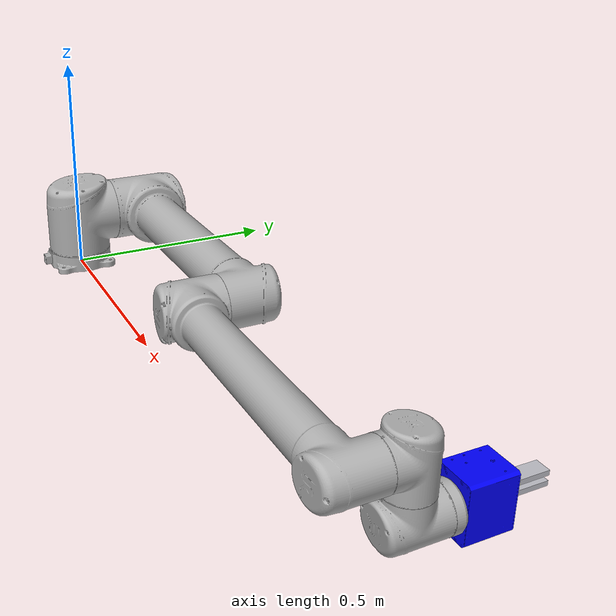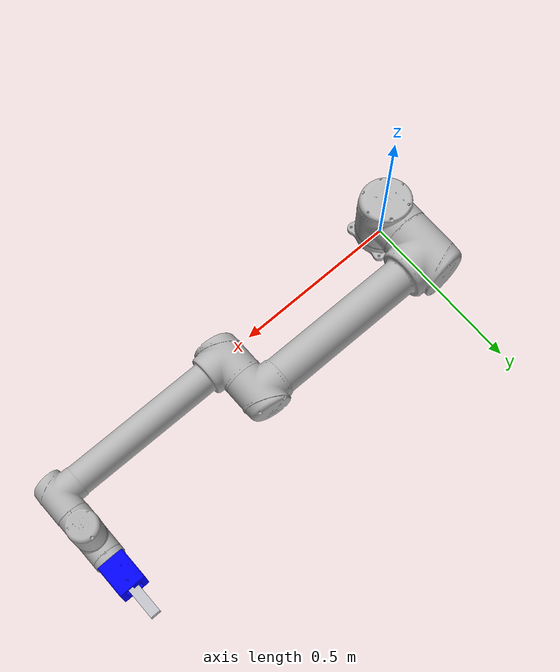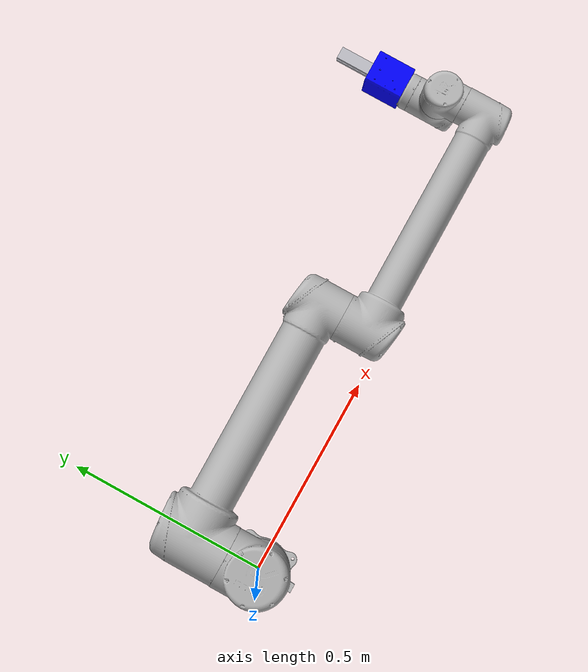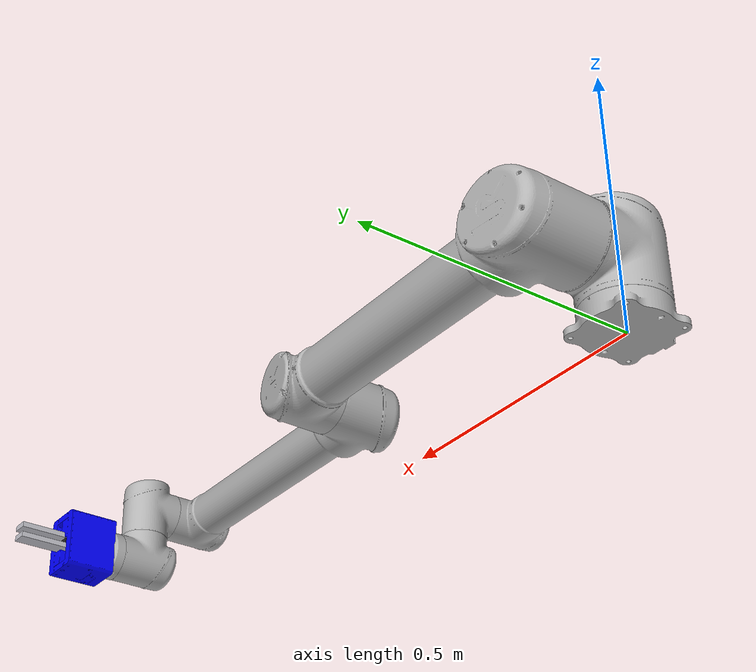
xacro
<?xml version="1.0" ?>
<!-- URDF obtido a partir do moveit assistant -->
<robot name="ur10_with_gripper">

  <link name="world"/>
  <!-- Junta fixa entre world e base_link -->
  <joint name="world_to_base_joint" type="fixed">
    <parent link="world"/>
    <child link="base_link"/>
    <origin rpy="0 0 0" xyz="0 0 0"/>
  </joint>

  <transmission name="shoulder_pan_trans">
    <type>transmission_interface/SimpleTransmission</type>
    <joint name="shoulder_pan_joint">
      <hardwareInterface>hardware_interface/EffortJointInterface</hardwareInterface>
    </joint>
    <actuator name="shoulder_pan_motor">
      <mechanicalReduction>1</mechanicalReduction>
    </actuator>
  </transmission>
  <transmission name="shoulder_lift_trans">
    <type>transmission_interface/SimpleTransmission</type>
    <joint name="shoulder_lift_joint">
      <hardwareInterface>hardware_interface/EffortJointInterface</hardwareInterface>
    </joint>
    <actuator name="shoulder_lift_motor">
      <mechanicalReduction>1</mechanicalReduction>
    </actuator>
  </transmission>
  <transmission name="elbow_trans">
    <type>transmission_interface/SimpleTransmission</type>
    <joint name="elbow_joint">
      <hardwareInterface>hardware_interface/EffortJointInterface</hardwareInterface>
    </joint>
    <actuator name="elbow_motor">
      <mechanicalReduction>1</mechanicalReduction>
    </actuator>
  </transmission>
  <transmission name="wrist_1_trans">
    <type>transmission_interface/SimpleTransmission</type>
    <joint name="wrist_1_joint">
      <hardwareInterface>hardware_interface/EffortJointInterface</hardwareInterface>
    </joint>
    <actuator name="wrist_1_motor">
      <mechanicalReduction>1</mechanicalReduction>
    </actuator>
  </transmission>
  <transmission name="wrist_2_trans">
    <type>transmission_interface/SimpleTransmission</type>
    <joint name="wrist_2_joint">
      <hardwareInterface>hardware_interface/EffortJointInterface</hardwareInterface>
    </joint>
    <actuator name="wrist_2_motor">
      <mechanicalReduction>1</mechanicalReduction>
    </actuator>
  </transmission>
  <transmission name="wrist_3_trans">
    <type>transmission_interface/SimpleTransmission</type>
    <joint name="wrist_3_joint">
      <hardwareInterface>hardware_interface/EffortJointInterface</hardwareInterface>
    </joint>
    <actuator name="wrist_3_motor">
      <mechanicalReduction>1</mechanicalReduction>
    </actuator>
  </transmission>
  <!-- links: main serial chain -->
  <link name="base_link"/>
  <link name="base_link_inertia">
    <visual>
      <origin rpy="0 0 3.141592653589793" xyz="0 0 0"/>
      <geometry>
        <mesh filename="package://ur_description/meshes/ur10/visual/base.dae"/>
      </geometry>
      <material name="LightGrey">
        <color rgba="0.7 0.7 0.7 1.0"/>
      </material>
    </visual>
    <collision>
      <origin rpy="0 0 3.141592653589793" xyz="0 0 0"/>
      <geometry>
        <mesh filename="package://ur_description/meshes/ur10/collision/base.stl"/>
      </geometry>
    </collision>
    <inertial>
      <mass value="4.0"/>
      <origin rpy="0 0 0" xyz="0 0 0"/>
      <inertia ixx="0.0061063308908" ixy="0.0" ixz="0.0" iyy="0.0061063308908" iyz="0.0" izz="0.01125"/>
    </inertial>
  </link>
  <link name="shoulder_link">
    <visual>
      <origin rpy="0 0 3.141592653589793" xyz="0 0 0"/>
      <geometry>
        <mesh filename="package://ur_description/meshes/ur10/visual/shoulder.dae"/>
      </geometry>
      <material name="LightGrey">
        <color rgba="0.7 0.7 0.7 1.0"/>
      </material>
    </visual>
    <collision>
      <origin rpy="0 0 3.141592653589793" xyz="0 0 0"/>
      <geometry>
        <mesh filename="package://ur_description/meshes/ur10/collision/shoulder.stl"/>
      </geometry>
    </collision>
    <inertial>
      <mass value="7.1"/>
      <origin rpy="1.570796326794897 0 0" xyz="0.021 -0.027 0.0"/>
      <inertia ixx="0.03408" ixy="2e-05" ixz="-0.00425" iyy="0.03529" iyz="8e-05" izz="0.02156"/>
    </inertial>
  </link>
  <link name="upper_arm_link">
    <visual>
      <origin rpy="1.5707963267948966 0 -1.5707963267948966" xyz="0 0 0.220941"/>
      <geometry>
        <mesh filename="package://ur_description/meshes/ur10/visual/upperarm.dae"/>
      </geometry>
      <material name="LightGrey">
        <color rgba="0.7 0.7 0.7 1.0"/>
      </material>
    </visual>
    <collision>
      <origin rpy="1.5707963267948966 0 -1.5707963267948966" xyz="0 0 0.220941"/>
      <geometry>
        <mesh filename="package://ur_description/meshes/ur10/collision/upperarm.stl"/>
      </geometry>
    </collision>
    <inertial>
      <mass value="12.7"/>
      <origin rpy="0 0 0" xyz="-0.232 0.0 0.158"/>
      <inertia ixx="0.02814" ixy="5e-05" ixz="-0.01561" iyy="0.77068" iyz="2e-05" izz="0.76943"/>
    </inertial>
  </link>
  <link name="forearm_link">
    <visual>
      <origin rpy="1.5707963267948966 0 -1.5707963267948966" xyz="0 0 0.049042"/>
      <geometry>
        <mesh filename="package://ur_description/meshes/ur10/visual/forearm.dae"/>
      </geometry>
      <material name="LightGrey">
        <color rgba="0.7 0.7 0.7 1.0"/>
      </material>
    </visual>
    <collision>
      <origin rpy="1.5707963267948966 0 -1.5707963267948966" xyz="0 0 0.049042"/>
      <geometry>
        <mesh filename="package://ur_description/meshes/ur10/collision/forearm.stl"/>
      </geometry>
    </collision>
    <inertial>
      <mass value="4.27"/>
      <origin rpy="0 0 0" xyz="-0.3323 0.0 0.068"/>
      <inertia ixx="0.01014" ixy="8e-05" ixz="0.00916" iyy="0.30928" iyz="0.0" izz="0.30646"/>
    </inertial>
  </link>
  <link name="wrist_1_link">
    <visual>
      <!-- TODO: Move this to a parameter -->
      <origin rpy="1.5707963267948966 0 0" xyz="0 0 -0.1149"/>
      <geometry>
        <mesh filename="package://ur_description/meshes/ur10/visual/wrist1.dae"/>
      </geometry>
      <material name="LightGrey">
        <color rgba="0.7 0.7 0.7 1.0"/>
      </material>
    </visual>
    <collision>
      <origin rpy="1.5707963267948966 0 0" xyz="0 0 -0.1149"/>
      <geometry>
        <mesh filename="package://ur_description/meshes/ur10/collision/wrist1.stl"/>
      </geometry>
    </collision>
    <inertial>
      <mass value="2.0"/>
      <origin rpy="1.570796326794897 0 0" xyz="0.0 -0.018 0.007"/>
      <inertia ixx="0.00296" ixy="-1e-05" ixz="0.0" iyy="0.00222" iyz="-0.00024" izz="0.00258"/>
    </inertial>
  </link>
  <link name="wrist_2_link">
    <visual>
      <origin rpy="0 0 0" xyz="0 0 -0.1158"/>
      <geometry>
        <mesh filename="package://ur_description/meshes/ur10/visual/wrist2.dae"/>
      </geometry>
      <material name="LightGrey">
        <color rgba="0.7 0.7 0.7 1.0"/>
      </material>
    </visual>
    <collision>
      <origin rpy="0 0 0" xyz="0 0 -0.1158"/>
      <geometry>
        <mesh filename="package://ur_description/meshes/ur10/collision/wrist2.stl"/>
      </geometry>
    </collision>
    <inertial>
      <mass value="2.0"/>
      <origin rpy="-1.570796326794897 0 0" xyz="0.0 0.018 -0.007"/>
      <inertia ixx="0.00296" ixy="-1e-05" ixz="0.0" iyy="0.00222" iyz="-0.00024" izz="0.00258"/>
    </inertial>
  </link>
  <link name="wrist_3_link">
    <visual>
      <origin rpy="1.5707963267948966 0 0" xyz="0 0 -0.0922"/>
      <geometry>
        <mesh filename="package://ur_description/meshes/ur10/visual/wrist3.dae"/>
      </geometry>
      <material name="LightGrey">
        <color rgba="0.7 0.7 0.7 1.0"/>
      </material>
    </visual>
    <collision>
      <origin rpy="1.5707963267948966 0 0" xyz="0 0 -0.0922"/>
      <geometry>
        <mesh filename="package://ur_description/meshes/ur10/collision/wrist3.stl"/>
      </geometry>
    </collision>
    <inertial>
      <mass value="0.365"/>
      <origin rpy="0 0 0" xyz="0.0 0 -0.026"/>
      <inertia ixx="0.0004" ixy="0.0" ixz="0.0" iyy="0.00041" iyz="0.0" izz="0.00034"/>
    </inertial>
  </link>
  <!-- joints: main serial chain -->
  <joint name="base_link-base_link_inertia" type="fixed">
    <parent link="base_link"/>
    <child link="base_link_inertia"/>
    <origin rpy="0 0 3.141592653589793" xyz="0 0 0"/>
  </joint>
  <joint name="shoulder_pan_joint" type="revolute">
    <parent link="base_link_inertia"/>
    <child link="shoulder_link"/>
    <origin rpy="0 0 0" xyz="0 0 0.1273"/>
    <axis xyz="0 0 1"/>
    <limit effort="330.0" lower="-6.283185307179586" upper="6.283185307179586" velocity="2.0943951023931953"/>
    <dynamics damping="0" friction="0"/>
  </joint>
  <joint name="shoulder_lift_joint" type="revolute">
    <parent link="shoulder_link"/>
    <child link="upper_arm_link"/>
    <origin rpy="1.570796327 0 0" xyz="0 0 0"/>
    <axis xyz="0 0 1"/>
    <limit effort="330.0" lower="-6.283185307179586" upper="6.283185307179586" velocity="2.0943951023931953"/>
    <dynamics damping="0" friction="0"/>
  </joint>
  <joint name="elbow_joint" type="revolute">
    <parent link="upper_arm_link"/>
    <child link="forearm_link"/>
    <origin rpy="0 0 0" xyz="-0.612 0 0"/>
    <axis xyz="0 0 1"/>
    <limit effort="150.0" lower="-3.141592653589793" upper="3.141592653589793" velocity="3.141592653589793"/>
    <dynamics damping="0" friction="0"/>
  </joint>
  <joint name="wrist_1_joint" type="revolute">
    <parent link="forearm_link"/>
    <child link="wrist_1_link"/>
    <origin rpy="0 0 0" xyz="-0.5723 0 0.163941"/>
    <axis xyz="0 0 1"/>
    <limit effort="56.0" lower="-6.283185307179586" upper="6.283185307179586" velocity="3.141592653589793"/>
    <dynamics damping="0" friction="0"/>
  </joint>
  <joint name="wrist_2_joint" type="revolute">
    <parent link="wrist_1_link"/>
    <child link="wrist_2_link"/>
    <origin rpy="1.570796327 0 0" xyz="0 -0.1157 -2.373046667922381e-11"/>
    <axis xyz="0 0 1"/>
    <limit effort="56.0" lower="-6.283185307179586" upper="6.283185307179586" velocity="3.141592653589793"/>
    <dynamics damping="0" friction="0"/>
  </joint>
  <joint name="wrist_3_joint" type="revolute">
    <parent link="wrist_2_link"/>
    <child link="wrist_3_link"/>
    <origin rpy="1.570796326589793 3.141592653589793 3.141592653589793" xyz="0 0.0922 -1.891053610911353e-11"/>
    <axis xyz="0 0 1"/>
    <limit effort="56.0" lower="-6.283185307179586" upper="6.283185307179586" velocity="3.141592653589793"/>
    <dynamics damping="0" friction="0"/>
  </joint>
  <!-- ROS-Industrial 'base' frame: base_link to UR 'Base' Coordinates transform -->
  <link name="base"/>
  <joint name="base_link-base_fixed_joint" type="fixed">
    <origin rpy="0 0 3.141592653589793" xyz="0 0 0"/>
    <parent link="base_link"/>
    <child link="base"/>
  </joint>
  <!-- ROS-Industrial 'flange' frame: attachment point for EEF models -->
  <link name="flange"/>
  <joint name="wrist_3-flange" type="fixed">
    <parent link="wrist_3_link"/>
    <child link="flange"/>
    <origin rpy="0 -1.5707963267948966 -1.5707963267948966" xyz="0 0 0"/>
  </joint>
  <!-- ROS-Industrial 'tool0' frame: all-zeros tool frame -->
  <link name="tool0"/>
  <joint name="flange-tool0" type="fixed">
    <!-- default toolframe: X+ left, Y+ up, Z+ front -->
    <origin rpy="1.5707963267948966 0 1.5707963267948966" xyz="0 0 0"/>
    <parent link="flange"/>
    <child link="tool0"/>
  </joint>
  <joint name="pg70_base_joint" type="fixed">
    <parent link="tool0"/>
    <child link="pg70_base_link"/>
    <origin rpy="0 0 0" xyz="0 0 0"/>
  </joint>
  <!-- BASE -->
  <link name="pg70_base_link">
    <inertial>
      <mass value="0.5"/>
      <origin rpy="0 0 0" xyz="0 0 0"/>
      <inertia ixx="1e-4" ixy="0" ixz="0" iyy="1e-4" iyz="0" izz="1e-4"/>
    </inertial>
    <visual>
      <geometry>
        <mesh filename="package://schunk_pg70/meshes/pg70.dae"/>
      </geometry>
      <material name="blue">
        <color rgba="0 0 1 1"/>
      </material>
    </visual>
    <collision>
      <geometry>
        <mesh filename="package://schunk_pg70/meshes/pg70.dae"/>
      </geometry>
    </collision>
  </link>
  <!-- LEFT FINGER BASE -->
  <joint name="pg70_finger_left_joint" type="prismatic">
    <parent link="pg70_base_link"/>
    <child link="pg70_finger_left_link"/>
    <limit effort="100" lower="-0.001" upper="0.04" velocity="2.0"/>
    <origin rpy="0 0 0" xyz="0 0 0.0789"/>
    <axis xyz="0 1 0"/>
  </joint>
  <link name="pg70_finger_left_link">
    <inertial>
      <mass value="0.05"/>
      <origin rpy="0 0 0" xyz="0 0 0"/>
      <inertia ixx="1e-5" ixy="0" ixz="0" iyy="1e-5" iyz="0" izz="1e-5"/>
    </inertial>
    <visual>
      <geometry>
        <box size="0.03 0.01 0.01"/>
      </geometry>
      <material name="black"/>
    </visual>
    <collision>
      <geometry>
        <box size="0.03 0.01 0.01"/>
      </geometry>
    </collision>
  </link>
  <!-- LEFT FINGERTIP -->
  <joint name="pg70_fingertip_left_joint" type="fixed">
    <parent link="pg70_finger_left_link"/>
    <child link="pg70_fingertip_left_link"/>
    <origin rpy="0 0 0" xyz="0 0.01 0.045"/>
  </joint>
  <link name="pg70_fingertip_left_link">
    <inertial>
      <mass value="0.02"/>
      <origin rpy="0 0 0" xyz="0 0 0"/>
      <inertia ixx="5e-6" ixy="0" ixz="0" iyy="5e-6" iyz="0" izz="5e-6"/>
    </inertial>
    <visual>
      <geometry>
        <box size="0.03 0.01 0.1"/>
      </geometry>
      <material name="silver"/>
    </visual>
    <collision>
      <geometry>
        <box size="0.03 0.01 0.1"/>
      </geometry>
    </collision>
  </link>
  <!-- RIGHT FINGER BASE -->
  <joint name="pg70_finger_right_joint" type="prismatic">
    <mimic joint="pg70_finger_left_joint" multiplier="1" offset="0"/>
    <parent link="pg70_base_link"/>
    <child link="pg70_finger_right_link"/>
    <limit effort="100" lower="-0.001" upper="0.04" velocity="2.0"/>
    <origin rpy="0 0 0" xyz="0 0 0.0789"/>
    <axis xyz="0 -1 0"/>
  </joint>
  <link name="pg70_finger_right_link">
    <inertial>
      <mass value="0.05"/>
      <origin rpy="0 0 0" xyz="0 0 0"/>
      <inertia ixx="1e-5" ixy="0" ixz="0" iyy="1e-5" iyz="0" izz="1e-5"/>
    </inertial>
    <visual>
      <geometry>
        <box size="0.03 0.01 0.01"/>
      </geometry>
      <material name="black"/>
    </visual>
    <collision>
      <geometry>
        <box size="0.03 0.01 0.01"/>
      </geometry>
    </collision>
  </link>
  <!-- RIGHT FINGERTIP -->
  <joint name="pg70_fingertip_right_joint" type="fixed">
    <parent link="pg70_finger_right_link"/>
    <child link="pg70_fingertip_right_link"/>
    <origin rpy="0 0 0" xyz="0 -0.01 0.045"/>
  </joint>
  <link name="pg70_fingertip_right_link">
    <inertial>
      <mass value="0.02"/>
      <origin rpy="0 0 0" xyz="0 0 0"/>
      <inertia ixx="5e-6" ixy="0" ixz="0" iyy="5e-6" iyz="0" izz="5e-6"/>
    </inertial>
    <visual>
      <geometry>
        <box size="0.03 0.01 0.1"/>
      </geometry>
      <material name="silver"/>
    </visual>
    <collision>
      <geometry>
        <box size="0.03 0.01 0.1"/>
      </geometry>
    </collision>
  </link>
  <!-- Transmissions -->
  <transmission name="pg70_finger_left_trans">
    <type>transmission_interface/SimpleTransmission</type>
    <joint name="pg70_finger_left_joint">
      <hardwareInterface>hardware_interface/PositionJointInterface</hardwareInterface>
    </joint>
    <actuator name="pg70_finger_left_motor">
      <mechanicalReduction>1</mechanicalReduction>
    </actuator>
  </transmission>
  <transmission name="pg70_finger_right_trans">
    <type>transmission_interface/SimpleTransmission</type>
    <joint name="pg70_finger_right_joint">
      <hardwareInterface>hardware_interface/PositionJointInterface</hardwareInterface>
    </joint>
    <actuator name="pg70_finger_right_motor">
      <mechanicalReduction>1</mechanicalReduction>
    </actuator>
  </transmission>
  <!-- Plugin para ROS control -->
  <gazebo>
    <plugin filename="libgazebo_ros_control.so" name="gazebo_ros_control">
      <robotNamespace>/ur10</robotNamespace>
    </plugin>
  </gazebo>
</robot>
